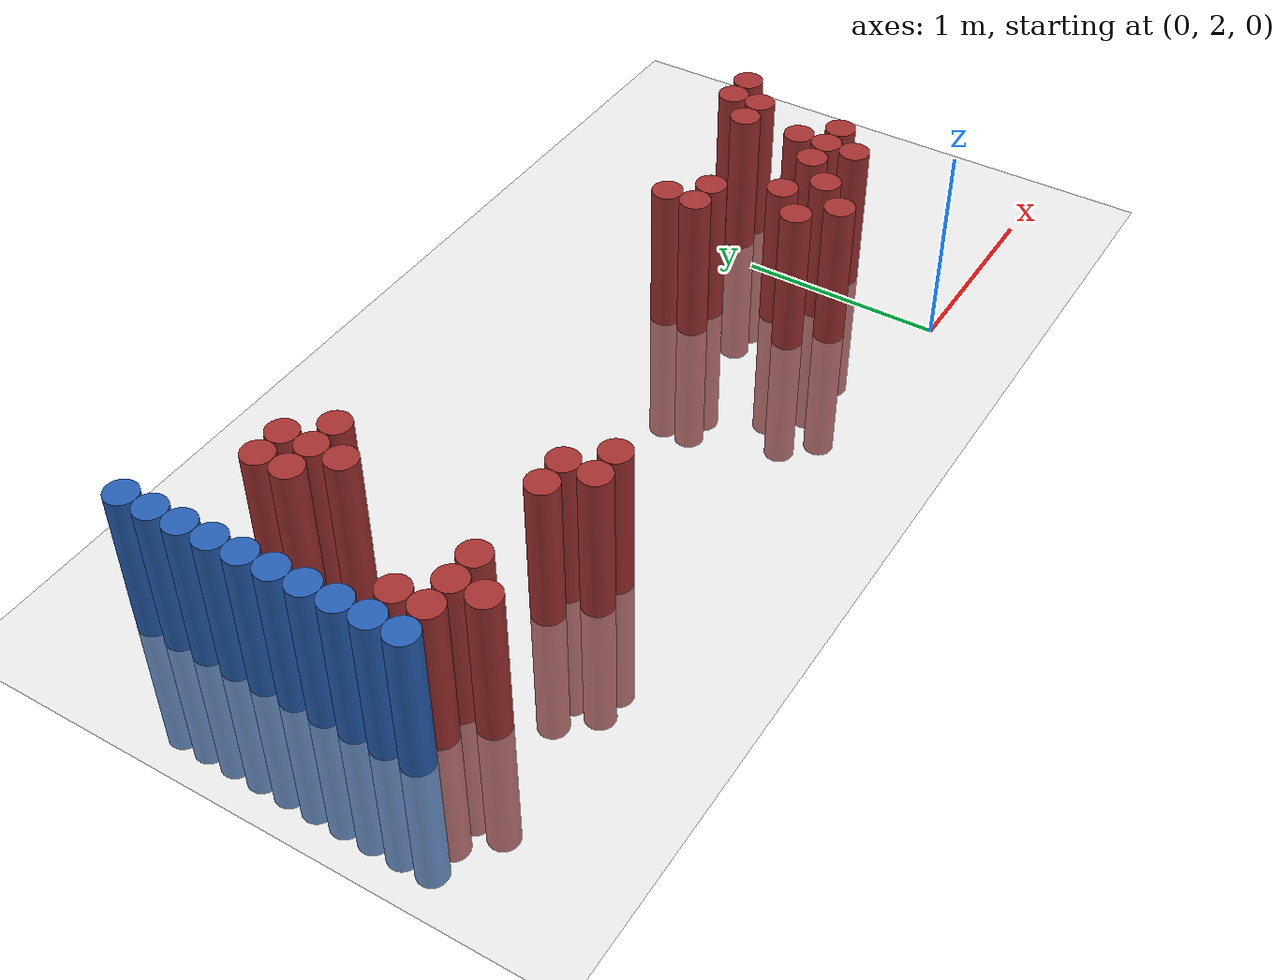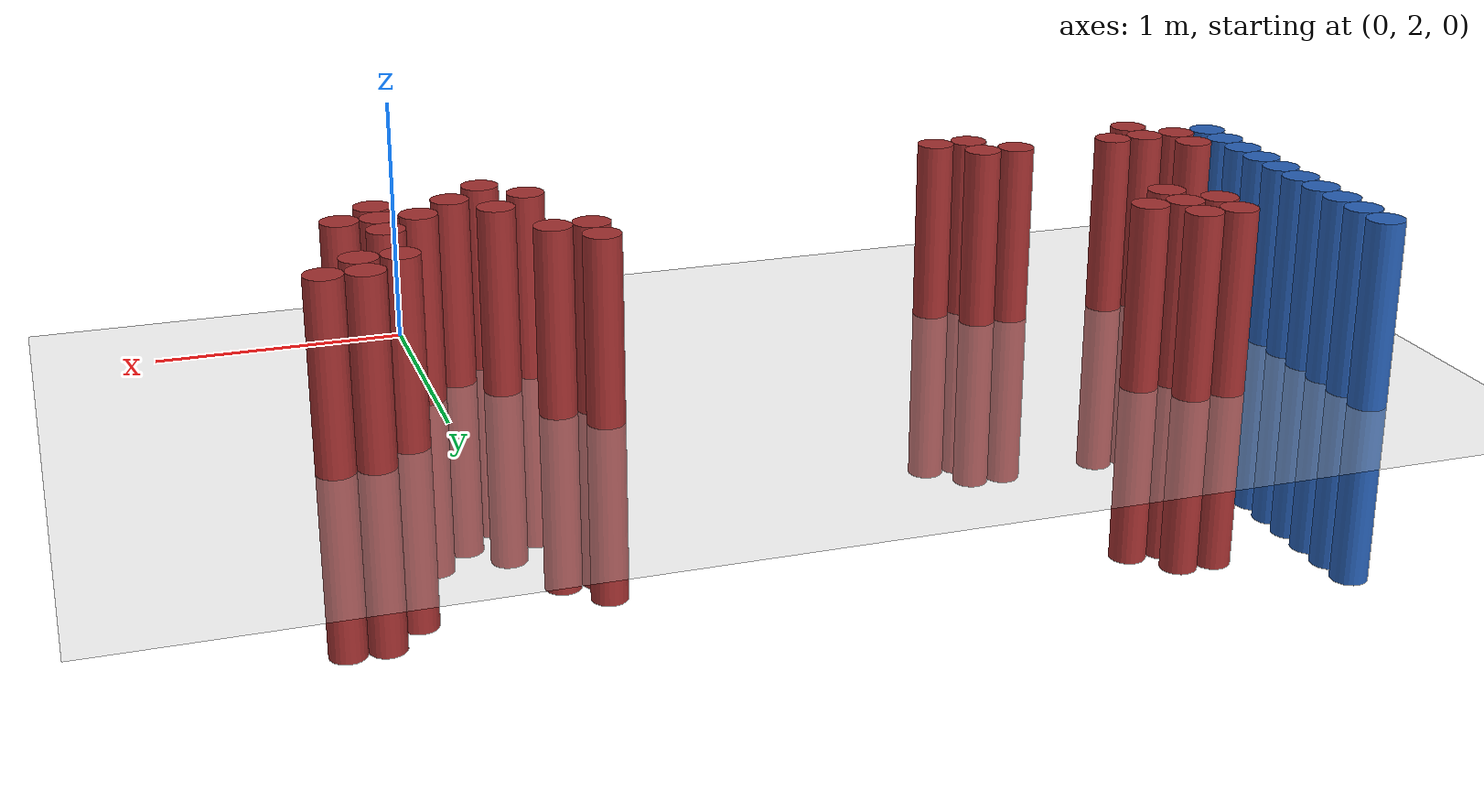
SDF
<sdf version="1.6">
 <world name="default">
  <model name="ground_plane">
   <static>1</static>
   <link name="link">
    <collision name="collision">
     <geometry><plane><normal>0 0 1</normal><size>100 100</size></plane></geometry>
     <surface><friction><ode><mu>100</mu><mu2>50</mu2></ode></friction></surface>
    </collision>
    <visual name="visual">
     <cast_shadows>0</cast_shadows>
     <geometry><plane><normal>0 0 1</normal><size>100 100</size></plane></geometry>
     <material>
      <script><uri>file://media/materials/scripts/gazebo.material</uri><name>Gazebo/Grey</name></script>
     </material>
    </visual>
   </link>
  </model>
  <model name="unit_cylinder_149">
   <static>1</static>
   <pose>-3.425000 2.575000 0.000000 0.000000 0.000000 0.000000</pose>
   <link name="link">
    <inertial>
     <mass>1</mass>
     <inertia><ixx>0.145833</ixx><ixy>0</ixy><ixz>0</ixz><iyy>0.145833</iyy><iyz>0</iyz><izz>0.125</izz></inertia>
    </inertial>
    <collision name="collision">
     <geometry><cylinder><radius>0.075000</radius><length>1.5</length></cylinder></geometry>
    </collision>
    <visual name="visual">
     <geometry><cylinder><radius>0.075000</radius><length>1.5</length></cylinder></geometry>
     <material>
      <ambient>0.152000 0.379000 0.720000 1</ambient>
      <diffuse>0.152000 0.379000 0.720000 1</diffuse>
     </material>
     <material>
      <script><name>Gazebo/Grey</name><uri>file://media/materials/scripts/gazebo.material</uri></script>
     </material>
    </visual>
   </link>
  </model>
  <model name="unit_cylinder_151">
   <static>1</static>
   <pose>-3.425000 2.725000 0.000000 0.000000 0.000000 0.000000</pose>
   <link name="link">
    <inertial>
     <mass>1</mass>
     <inertia><ixx>0.145833</ixx><ixy>0</ixy><ixz>0</ixz><iyy>0.145833</iyy><iyz>0</iyz><izz>0.125</izz></inertia>
    </inertial>
    <collision name="collision">
     <geometry><cylinder><radius>0.075000</radius><length>1.5</length></cylinder></geometry>
    </collision>
    <visual name="visual">
     <geometry><cylinder><radius>0.075000</radius><length>1.5</length></cylinder></geometry>
     <material>
      <ambient>0.152000 0.379000 0.720000 1</ambient>
      <diffuse>0.152000 0.379000 0.720000 1</diffuse>
     </material>
     <material>
      <script><name>Gazebo/Grey</name><uri>file://media/materials/scripts/gazebo.material</uri></script>
     </material>
    </visual>
   </link>
  </model>
  <model name="unit_cylinder_153">
   <static>1</static>
   <pose>-3.425000 2.875000 0.000000 0.000000 0.000000 0.000000</pose>
   <link name="link">
    <inertial>
     <mass>1</mass>
     <inertia><ixx>0.145833</ixx><ixy>0</ixy><ixz>0</ixz><iyy>0.145833</iyy><iyz>0</iyz><izz>0.125</izz></inertia>
    </inertial>
    <collision name="collision">
     <geometry><cylinder><radius>0.075000</radius><length>1.5</length></cylinder></geometry>
    </collision>
    <visual name="visual">
     <geometry><cylinder><radius>0.075000</radius><length>1.5</length></cylinder></geometry>
     <material>
      <ambient>0.152000 0.379000 0.720000 1</ambient>
      <diffuse>0.152000 0.379000 0.720000 1</diffuse>
     </material>
     <material>
      <script><name>Gazebo/Grey</name><uri>file://media/materials/scripts/gazebo.material</uri></script>
     </material>
    </visual>
   </link>
  </model>
  <model name="unit_cylinder_155">
   <static>1</static>
   <pose>-3.425000 3.025000 0.000000 0.000000 0.000000 0.000000</pose>
   <link name="link">
    <inertial>
     <mass>1</mass>
     <inertia><ixx>0.145833</ixx><ixy>0</ixy><ixz>0</ixz><iyy>0.145833</iyy><iyz>0</iyz><izz>0.125</izz></inertia>
    </inertial>
    <collision name="collision">
     <geometry><cylinder><radius>0.075000</radius><length>1.5</length></cylinder></geometry>
    </collision>
    <visual name="visual">
     <geometry><cylinder><radius>0.075000</radius><length>1.5</length></cylinder></geometry>
     <material>
      <ambient>0.152000 0.379000 0.720000 1</ambient>
      <diffuse>0.152000 0.379000 0.720000 1</diffuse>
     </material>
     <material>
      <script><name>Gazebo/Grey</name><uri>file://media/materials/scripts/gazebo.material</uri></script>
     </material>
    </visual>
   </link>
  </model>
  <model name="unit_cylinder_157">
   <static>1</static>
   <pose>-3.425000 3.175000 0.000000 0.000000 0.000000 0.000000</pose>
   <link name="link">
    <inertial>
     <mass>1</mass>
     <inertia><ixx>0.145833</ixx><ixy>0</ixy><ixz>0</ixz><iyy>0.145833</iyy><iyz>0</iyz><izz>0.125</izz></inertia>
    </inertial>
    <collision name="collision">
     <geometry><cylinder><radius>0.075000</radius><length>1.5</length></cylinder></geometry>
    </collision>
    <visual name="visual">
     <geometry><cylinder><radius>0.075000</radius><length>1.5</length></cylinder></geometry>
     <material>
      <ambient>0.152000 0.379000 0.720000 1</ambient>
      <diffuse>0.152000 0.379000 0.720000 1</diffuse>
     </material>
     <material>
      <script><name>Gazebo/Grey</name><uri>file://media/materials/scripts/gazebo.material</uri></script>
     </material>
    </visual>
   </link>
  </model>
  <model name="unit_cylinder_159">
   <static>1</static>
   <pose>-3.425000 3.325000 0.000000 0.000000 0.000000 0.000000</pose>
   <link name="link">
    <inertial>
     <mass>1</mass>
     <inertia><ixx>0.145833</ixx><ixy>0</ixy><ixz>0</ixz><iyy>0.145833</iyy><iyz>0</iyz><izz>0.125</izz></inertia>
    </inertial>
    <collision name="collision">
     <geometry><cylinder><radius>0.075000</radius><length>1.5</length></cylinder></geometry>
    </collision>
    <visual name="visual">
     <geometry><cylinder><radius>0.075000</radius><length>1.5</length></cylinder></geometry>
     <material>
      <ambient>0.152000 0.379000 0.720000 1</ambient>
      <diffuse>0.152000 0.379000 0.720000 1</diffuse>
     </material>
     <material>
      <script><name>Gazebo/Grey</name><uri>file://media/materials/scripts/gazebo.material</uri></script>
     </material>
    </visual>
   </link>
  </model>
  <model name="unit_cylinder_161">
   <static>1</static>
   <pose>-3.425000 3.475000 0.000000 0.000000 0.000000 0.000000</pose>
   <link name="link">
    <inertial>
     <mass>1</mass>
     <inertia><ixx>0.145833</ixx><ixy>0</ixy><ixz>0</ixz><iyy>0.145833</iyy><iyz>0</iyz><izz>0.125</izz></inertia>
    </inertial>
    <collision name="collision">
     <geometry><cylinder><radius>0.075000</radius><length>1.5</length></cylinder></geometry>
    </collision>
    <visual name="visual">
     <geometry><cylinder><radius>0.075000</radius><length>1.5</length></cylinder></geometry>
     <material>
      <ambient>0.152000 0.379000 0.720000 1</ambient>
      <diffuse>0.152000 0.379000 0.720000 1</diffuse>
     </material>
     <material>
      <script><name>Gazebo/Grey</name><uri>file://media/materials/scripts/gazebo.material</uri></script>
     </material>
    </visual>
   </link>
  </model>
  <model name="unit_cylinder_163">
   <static>1</static>
   <pose>-3.425000 3.625000 0.000000 0.000000 0.000000 0.000000</pose>
   <link name="link">
    <inertial>
     <mass>1</mass>
     <inertia><ixx>0.145833</ixx><ixy>0</ixy><ixz>0</ixz><iyy>0.145833</iyy><iyz>0</iyz><izz>0.125</izz></inertia>
    </inertial>
    <collision name="collision">
     <geometry><cylinder><radius>0.075000</radius><length>1.5</length></cylinder></geometry>
    </collision>
    <visual name="visual">
     <geometry><cylinder><radius>0.075000</radius><length>1.5</length></cylinder></geometry>
     <material>
      <ambient>0.152000 0.379000 0.720000 1</ambient>
      <diffuse>0.152000 0.379000 0.720000 1</diffuse>
     </material>
     <material>
      <script><name>Gazebo/Grey</name><uri>file://media/materials/scripts/gazebo.material</uri></script>
     </material>
    </visual>
   </link>
  </model>
  <model name="unit_cylinder_165">
   <static>1</static>
   <pose>-3.425000 3.775000 0.000000 0.000000 0.000000 0.000000</pose>
   <link name="link">
    <inertial>
     <mass>1</mass>
     <inertia><ixx>0.145833</ixx><ixy>0</ixy><ixz>0</ixz><iyy>0.145833</iyy><iyz>0</iyz><izz>0.125</izz></inertia>
    </inertial>
    <collision name="collision">
     <geometry><cylinder><radius>0.075000</radius><length>1.5</length></cylinder></geometry>
    </collision>
    <visual name="visual">
     <geometry><cylinder><radius>0.075000</radius><length>1.5</length></cylinder></geometry>
     <material>
      <ambient>0.152000 0.379000 0.720000 1</ambient>
      <diffuse>0.152000 0.379000 0.720000 1</diffuse>
     </material>
     <material>
      <script><name>Gazebo/Grey</name><uri>file://media/materials/scripts/gazebo.material</uri></script>
     </material>
    </visual>
   </link>
  </model>
  <model name="unit_cylinder_167">
   <static>1</static>
   <pose>-3.425000 3.925000 0.000000 0.000000 0.000000 0.000000</pose>
   <link name="link">
    <inertial>
     <mass>1</mass>
     <inertia><ixx>0.145833</ixx><ixy>0</ixy><ixz>0</ixz><iyy>0.145833</iyy><iyz>0</iyz><izz>0.125</izz></inertia>
    </inertial>
    <collision name="collision">
     <geometry><cylinder><radius>0.075000</radius><length>1.5</length></cylinder></geometry>
    </collision>
    <visual name="visual">
     <geometry><cylinder><radius>0.075000</radius><length>1.5</length></cylinder></geometry>
     <material>
      <ambient>0.152000 0.379000 0.720000 1</ambient>
      <diffuse>0.152000 0.379000 0.720000 1</diffuse>
     </material>
     <material>
      <script><name>Gazebo/Grey</name><uri>file://media/materials/scripts/gazebo.material</uri></script>
     </material>
    </visual>
   </link>
  </model>
  <model name="unit_cylinder_238">
   <static>1</static>
   <pose>-3.425000 2.575000 0.000000 0.000000 0.000000 0.000000</pose>
   <link name="link">
    <inertial>
     <mass>1</mass>
     <inertia><ixx>0.145833</ixx><ixy>0</ixy><ixz>0</ixz><iyy>0.145833</iyy><iyz>0</iyz><izz>0.125</izz></inertia>
    </inertial>
    <collision name="collision">
     <geometry><cylinder><radius>0.075000</radius><length>1.5</length></cylinder></geometry>
    </collision>
    <visual name="visual">
     <geometry><cylinder><radius>0.075000</radius><length>1.5</length></cylinder></geometry>
     <material>
      <ambient>0.152000 0.379000 0.720000 1</ambient>
      <diffuse>0.152000 0.379000 0.720000 1</diffuse>
     </material>
     <material>
      <script><name>Gazebo/Grey</name><uri>file://media/materials/scripts/gazebo.material</uri></script>
     </material>
    </visual>
   </link>
  </model>
  <model name="unit_cylinder_239">
   <static>1</static>
   <pose>-3.425000 2.725000 0.000000 0.000000 0.000000 0.000000</pose>
   <link name="link">
    <inertial>
     <mass>1</mass>
     <inertia><ixx>0.145833</ixx><ixy>0</ixy><ixz>0</ixz><iyy>0.145833</iyy><iyz>0</iyz><izz>0.125</izz></inertia>
    </inertial>
    <collision name="collision">
     <geometry><cylinder><radius>0.075000</radius><length>1.5</length></cylinder></geometry>
    </collision>
    <visual name="visual">
     <geometry><cylinder><radius>0.075000</radius><length>1.5</length></cylinder></geometry>
     <material>
      <ambient>0.152000 0.379000 0.720000 1</ambient>
      <diffuse>0.152000 0.379000 0.720000 1</diffuse>
     </material>
     <material>
      <script><name>Gazebo/Grey</name><uri>file://media/materials/scripts/gazebo.material</uri></script>
     </material>
    </visual>
   </link>
  </model>
  <model name="unit_cylinder_240">
   <static>1</static>
   <pose>-3.425000 2.875000 0.000000 0.000000 0.000000 0.000000</pose>
   <link name="link">
    <inertial>
     <mass>1</mass>
     <inertia><ixx>0.145833</ixx><ixy>0</ixy><ixz>0</ixz><iyy>0.145833</iyy><iyz>0</iyz><izz>0.125</izz></inertia>
    </inertial>
    <collision name="collision">
     <geometry><cylinder><radius>0.075000</radius><length>1.5</length></cylinder></geometry>
    </collision>
    <visual name="visual">
     <geometry><cylinder><radius>0.075000</radius><length>1.5</length></cylinder></geometry>
     <material>
      <ambient>0.152000 0.379000 0.720000 1</ambient>
      <diffuse>0.152000 0.379000 0.720000 1</diffuse>
     </material>
     <material>
      <script><name>Gazebo/Grey</name><uri>file://media/materials/scripts/gazebo.material</uri></script>
     </material>
    </visual>
   </link>
  </model>
  <model name="unit_cylinder_241">
   <static>1</static>
   <pose>-3.425000 3.025000 0.000000 0.000000 0.000000 0.000000</pose>
   <link name="link">
    <inertial>
     <mass>1</mass>
     <inertia><ixx>0.145833</ixx><ixy>0</ixy><ixz>0</ixz><iyy>0.145833</iyy><iyz>0</iyz><izz>0.125</izz></inertia>
    </inertial>
    <collision name="collision">
     <geometry><cylinder><radius>0.075000</radius><length>1.5</length></cylinder></geometry>
    </collision>
    <visual name="visual">
     <geometry><cylinder><radius>0.075000</radius><length>1.5</length></cylinder></geometry>
     <material>
      <ambient>0.152000 0.379000 0.720000 1</ambient>
      <diffuse>0.152000 0.379000 0.720000 1</diffuse>
     </material>
     <material>
      <script><name>Gazebo/Grey</name><uri>file://media/materials/scripts/gazebo.material</uri></script>
     </material>
    </visual>
   </link>
  </model>
  <model name="unit_cylinder_242">
   <static>1</static>
   <pose>-3.425000 3.175000 0.000000 0.000000 0.000000 0.000000</pose>
   <link name="link">
    <inertial>
     <mass>1</mass>
     <inertia><ixx>0.145833</ixx><ixy>0</ixy><ixz>0</ixz><iyy>0.145833</iyy><iyz>0</iyz><izz>0.125</izz></inertia>
    </inertial>
    <collision name="collision">
     <geometry><cylinder><radius>0.075000</radius><length>1.5</length></cylinder></geometry>
    </collision>
    <visual name="visual">
     <geometry><cylinder><radius>0.075000</radius><length>1.5</length></cylinder></geometry>
     <material>
      <ambient>0.152000 0.379000 0.720000 1</ambient>
      <diffuse>0.152000 0.379000 0.720000 1</diffuse>
     </material>
     <material>
      <script><name>Gazebo/Grey</name><uri>file://media/materials/scripts/gazebo.material</uri></script>
     </material>
    </visual>
   </link>
  </model>
  <model name="unit_cylinder_243">
   <static>1</static>
   <pose>-3.425000 3.325000 0.000000 0.000000 0.000000 0.000000</pose>
   <link name="link">
    <inertial>
     <mass>1</mass>
     <inertia><ixx>0.145833</ixx><ixy>0</ixy><ixz>0</ixz><iyy>0.145833</iyy><iyz>0</iyz><izz>0.125</izz></inertia>
    </inertial>
    <collision name="collision">
     <geometry><cylinder><radius>0.075000</radius><length>1.5</length></cylinder></geometry>
    </collision>
    <visual name="visual">
     <geometry><cylinder><radius>0.075000</radius><length>1.5</length></cylinder></geometry>
     <material>
      <ambient>0.152000 0.379000 0.720000 1</ambient>
      <diffuse>0.152000 0.379000 0.720000 1</diffuse>
     </material>
     <material>
      <script><name>Gazebo/Grey</name><uri>file://media/materials/scripts/gazebo.material</uri></script>
     </material>
    </visual>
   </link>
  </model>
  <model name="unit_cylinder_244">
   <static>1</static>
   <pose>-3.425000 3.475000 0.000000 0.000000 0.000000 0.000000</pose>
   <link name="link">
    <inertial>
     <mass>1</mass>
     <inertia><ixx>0.145833</ixx><ixy>0</ixy><ixz>0</ixz><iyy>0.145833</iyy><iyz>0</iyz><izz>0.125</izz></inertia>
    </inertial>
    <collision name="collision">
     <geometry><cylinder><radius>0.075000</radius><length>1.5</length></cylinder></geometry>
    </collision>
    <visual name="visual">
     <geometry><cylinder><radius>0.075000</radius><length>1.5</length></cylinder></geometry>
     <material>
      <ambient>0.152000 0.379000 0.720000 1</ambient>
      <diffuse>0.152000 0.379000 0.720000 1</diffuse>
     </material>
     <material>
      <script><name>Gazebo/Grey</name><uri>file://media/materials/scripts/gazebo.material</uri></script>
     </material>
    </visual>
   </link>
  </model>
  <model name="unit_cylinder_245">
   <static>1</static>
   <pose>-3.425000 3.625000 0.000000 0.000000 0.000000 0.000000</pose>
   <link name="link">
    <inertial>
     <mass>1</mass>
     <inertia><ixx>0.145833</ixx><ixy>0</ixy><ixz>0</ixz><iyy>0.145833</iyy><iyz>0</iyz><izz>0.125</izz></inertia>
    </inertial>
    <collision name="collision">
     <geometry><cylinder><radius>0.075000</radius><length>1.5</length></cylinder></geometry>
    </collision>
    <visual name="visual">
     <geometry><cylinder><radius>0.075000</radius><length>1.5</length></cylinder></geometry>
     <material>
      <ambient>0.152000 0.379000 0.720000 1</ambient>
      <diffuse>0.152000 0.379000 0.720000 1</diffuse>
     </material>
     <material>
      <script><name>Gazebo/Grey</name><uri>file://media/materials/scripts/gazebo.material</uri></script>
     </material>
    </visual>
   </link>
  </model>
  <model name="unit_cylinder_246">
   <static>1</static>
   <pose>-3.425000 3.775000 0.000000 0.000000 0.000000 0.000000</pose>
   <link name="link">
    <inertial>
     <mass>1</mass>
     <inertia><ixx>0.145833</ixx><ixy>0</ixy><ixz>0</ixz><iyy>0.145833</iyy><iyz>0</iyz><izz>0.125</izz></inertia>
    </inertial>
    <collision name="collision">
     <geometry><cylinder><radius>0.075000</radius><length>1.5</length></cylinder></geometry>
    </collision>
    <visual name="visual">
     <geometry><cylinder><radius>0.075000</radius><length>1.5</length></cylinder></geometry>
     <material>
      <ambient>0.152000 0.379000 0.720000 1</ambient>
      <diffuse>0.152000 0.379000 0.720000 1</diffuse>
     </material>
     <material>
      <script><name>Gazebo/Grey</name><uri>file://media/materials/scripts/gazebo.material</uri></script>
     </material>
    </visual>
   </link>
  </model>
  <model name="unit_cylinder_247">
   <static>1</static>
   <pose>-3.425000 3.925000 0.000000 0.000000 0.000000 0.000000</pose>
   <link name="link">
    <inertial>
     <mass>1</mass>
     <inertia><ixx>0.145833</ixx><ixy>0</ixy><ixz>0</ixz><iyy>0.145833</iyy><iyz>0</iyz><izz>0.125</izz></inertia>
    </inertial>
    <collision name="collision">
     <geometry><cylinder><radius>0.075000</radius><length>1.5</length></cylinder></geometry>
    </collision>
    <visual name="visual">
     <geometry><cylinder><radius>0.075000</radius><length>1.5</length></cylinder></geometry>
     <material>
      <ambient>0.152000 0.379000 0.720000 1</ambient>
      <diffuse>0.152000 0.379000 0.720000 1</diffuse>
     </material>
     <material>
      <script><name>Gazebo/Grey</name><uri>file://media/materials/scripts/gazebo.material</uri></script>
     </material>
    </visual>
   </link>
  </model>
  <model name="unit_cylinder_271">
   <static>1</static>
   <pose>-3.275000 2.575000 0.000000 0.000000 0.000000 0.000000</pose>
   <link name="link">
    <inertial>
     <mass>1</mass>
     <inertia><ixx>0.145833</ixx><ixy>0</ixy><ixz>0</ixz><iyy>0.145833</iyy><iyz>0</iyz><izz>0.125</izz></inertia>
    </inertial>
    <collision name="collision">
     <geometry><cylinder><radius>0.075000</radius><length>1.5</length></cylinder></geometry>
    </collision>
    <visual name="visual">
     <geometry><cylinder><radius>0.075000</radius><length>1.5</length></cylinder></geometry>
     <material>
      <ambient>0.648000 0.192000 0.192000 1</ambient>
      <diffuse>0.648000 0.192000 0.192000 1</diffuse>
     </material>
     <material>
      <script><name>Gazebo/Grey</name><uri>file://media/materials/scripts/gazebo.material</uri></script>
     </material>
    </visual>
   </link>
  </model>
  <model name="unit_cylinder_272">
   <static>1</static>
   <pose>-3.275000 2.725000 0.000000 0.000000 0.000000 0.000000</pose>
   <link name="link">
    <inertial>
     <mass>1</mass>
     <inertia><ixx>0.145833</ixx><ixy>0</ixy><ixz>0</ixz><iyy>0.145833</iyy><iyz>0</iyz><izz>0.125</izz></inertia>
    </inertial>
    <collision name="collision">
     <geometry><cylinder><radius>0.075000</radius><length>1.5</length></cylinder></geometry>
    </collision>
    <visual name="visual">
     <geometry><cylinder><radius>0.075000</radius><length>1.5</length></cylinder></geometry>
     <material>
      <ambient>0.648000 0.192000 0.192000 1</ambient>
      <diffuse>0.648000 0.192000 0.192000 1</diffuse>
     </material>
     <material>
      <script><name>Gazebo/Grey</name><uri>file://media/materials/scripts/gazebo.material</uri></script>
     </material>
    </visual>
   </link>
  </model>
  <model name="unit_cylinder_278">
   <static>1</static>
   <pose>-3.125000 2.425000 0.000000 0.000000 0.000000 0.000000</pose>
   <link name="link">
    <inertial>
     <mass>1</mass>
     <inertia><ixx>0.145833</ixx><ixy>0</ixy><ixz>0</ixz><iyy>0.145833</iyy><iyz>0</iyz><izz>0.125</izz></inertia>
    </inertial>
    <collision name="collision">
     <geometry><cylinder><radius>0.075000</radius><length>1.5</length></cylinder></geometry>
    </collision>
    <visual name="visual">
     <geometry><cylinder><radius>0.075000</radius><length>1.5</length></cylinder></geometry>
     <material>
      <ambient>0.648000 0.192000 0.192000 1</ambient>
      <diffuse>0.648000 0.192000 0.192000 1</diffuse>
     </material>
     <material>
      <script><name>Gazebo/Grey</name><uri>file://media/materials/scripts/gazebo.material</uri></script>
     </material>
    </visual>
   </link>
  </model>
  <model name="unit_cylinder_279">
   <static>1</static>
   <pose>-3.125000 2.575000 0.000000 0.000000 0.000000 0.000000</pose>
   <link name="link">
    <inertial>
     <mass>1</mass>
     <inertia><ixx>0.145833</ixx><ixy>0</ixy><ixz>0</ixz><iyy>0.145833</iyy><iyz>0</iyz><izz>0.125</izz></inertia>
    </inertial>
    <collision name="collision">
     <geometry><cylinder><radius>0.075000</radius><length>1.5</length></cylinder></geometry>
    </collision>
    <visual name="visual">
     <geometry><cylinder><radius>0.075000</radius><length>1.5</length></cylinder></geometry>
     <material>
      <ambient>0.648000 0.192000 0.192000 1</ambient>
      <diffuse>0.648000 0.192000 0.192000 1</diffuse>
     </material>
     <material>
      <script><name>Gazebo/Grey</name><uri>file://media/materials/scripts/gazebo.material</uri></script>
     </material>
    </visual>
   </link>
  </model>
  <model name="unit_cylinder_283">
   <static>1</static>
   <pose>-2.975000 2.575000 0.000000 0.000000 0.000000 0.000000</pose>
   <link name="link">
    <inertial>
     <mass>1</mass>
     <inertia><ixx>0.145833</ixx><ixy>0</ixy><ixz>0</ixz><iyy>0.145833</iyy><iyz>0</iyz><izz>0.125</izz></inertia>
    </inertial>
    <collision name="collision">
     <geometry><cylinder><radius>0.075000</radius><length>1.5</length></cylinder></geometry>
    </collision>
    <visual name="visual">
     <geometry><cylinder><radius>0.075000</radius><length>1.5</length></cylinder></geometry>
     <material>
      <ambient>0.648000 0.192000 0.192000 1</ambient>
      <diffuse>0.648000 0.192000 0.192000 1</diffuse>
     </material>
     <material>
      <script><name>Gazebo/Grey</name><uri>file://media/materials/scripts/gazebo.material</uri></script>
     </material>
    </visual>
   </link>
  </model>
  <model name="unit_cylinder_284">
   <static>1</static>
   <pose>-2.975000 3.475000 0.000000 0.000000 0.000000 0.000000</pose>
   <link name="link">
    <inertial>
     <mass>1</mass>
     <inertia><ixx>0.145833</ixx><ixy>0</ixy><ixz>0</ixz><iyy>0.145833</iyy><iyz>0</iyz><izz>0.125</izz></inertia>
    </inertial>
    <collision name="collision">
     <geometry><cylinder><radius>0.075000</radius><length>1.5</length></cylinder></geometry>
    </collision>
    <visual name="visual">
     <geometry><cylinder><radius>0.075000</radius><length>1.5</length></cylinder></geometry>
     <material>
      <ambient>0.648000 0.192000 0.192000 1</ambient>
      <diffuse>0.648000 0.192000 0.192000 1</diffuse>
     </material>
     <material>
      <script><name>Gazebo/Grey</name><uri>file://media/materials/scripts/gazebo.material</uri></script>
     </material>
    </visual>
   </link>
  </model>
  <model name="unit_cylinder_285">
   <static>1</static>
   <pose>-2.975000 3.625000 0.000000 0.000000 0.000000 0.000000</pose>
   <link name="link">
    <inertial>
     <mass>1</mass>
     <inertia><ixx>0.145833</ixx><ixy>0</ixy><ixz>0</ixz><iyy>0.145833</iyy><iyz>0</iyz><izz>0.125</izz></inertia>
    </inertial>
    <collision name="collision">
     <geometry><cylinder><radius>0.075000</radius><length>1.5</length></cylinder></geometry>
    </collision>
    <visual name="visual">
     <geometry><cylinder><radius>0.075000</radius><length>1.5</length></cylinder></geometry>
     <material>
      <ambient>0.648000 0.192000 0.192000 1</ambient>
      <diffuse>0.648000 0.192000 0.192000 1</diffuse>
     </material>
     <material>
      <script><name>Gazebo/Grey</name><uri>file://media/materials/scripts/gazebo.material</uri></script>
     </material>
    </visual>
   </link>
  </model>
  <model name="unit_cylinder_288">
   <static>1</static>
   <pose>-2.825000 3.325000 0.000000 0.000000 0.000000 0.000000</pose>
   <link name="link">
    <inertial>
     <mass>1</mass>
     <inertia><ixx>0.145833</ixx><ixy>0</ixy><ixz>0</ixz><iyy>0.145833</iyy><iyz>0</iyz><izz>0.125</izz></inertia>
    </inertial>
    <collision name="collision">
     <geometry><cylinder><radius>0.075000</radius><length>1.5</length></cylinder></geometry>
    </collision>
    <visual name="visual">
     <geometry><cylinder><radius>0.075000</radius><length>1.5</length></cylinder></geometry>
     <material>
      <ambient>0.648000 0.192000 0.192000 1</ambient>
      <diffuse>0.648000 0.192000 0.192000 1</diffuse>
     </material>
     <material>
      <script><name>Gazebo/Grey</name><uri>file://media/materials/scripts/gazebo.material</uri></script>
     </material>
    </visual>
   </link>
  </model>
  <model name="unit_cylinder_289">
   <static>1</static>
   <pose>-2.825000 3.475000 0.000000 0.000000 0.000000 0.000000</pose>
   <link name="link">
    <inertial>
     <mass>1</mass>
     <inertia><ixx>0.145833</ixx><ixy>0</ixy><ixz>0</ixz><iyy>0.145833</iyy><iyz>0</iyz><izz>0.125</izz></inertia>
    </inertial>
    <collision name="collision">
     <geometry><cylinder><radius>0.075000</radius><length>1.5</length></cylinder></geometry>
    </collision>
    <visual name="visual">
     <geometry><cylinder><radius>0.075000</radius><length>1.5</length></cylinder></geometry>
     <material>
      <ambient>0.648000 0.192000 0.192000 1</ambient>
      <diffuse>0.648000 0.192000 0.192000 1</diffuse>
     </material>
     <material>
      <script><name>Gazebo/Grey</name><uri>file://media/materials/scripts/gazebo.material</uri></script>
     </material>
    </visual>
   </link>
  </model>
  <model name="unit_cylinder_290">
   <static>1</static>
   <pose>-2.825000 3.625000 0.000000 0.000000 0.000000 0.000000</pose>
   <link name="link">
    <inertial>
     <mass>1</mass>
     <inertia><ixx>0.145833</ixx><ixy>0</ixy><ixz>0</ixz><iyy>0.145833</iyy><iyz>0</iyz><izz>0.125</izz></inertia>
    </inertial>
    <collision name="collision">
     <geometry><cylinder><radius>0.075000</radius><length>1.5</length></cylinder></geometry>
    </collision>
    <visual name="visual">
     <geometry><cylinder><radius>0.075000</radius><length>1.5</length></cylinder></geometry>
     <material>
      <ambient>0.648000 0.192000 0.192000 1</ambient>
      <diffuse>0.648000 0.192000 0.192000 1</diffuse>
     </material>
     <material>
      <script><name>Gazebo/Grey</name><uri>file://media/materials/scripts/gazebo.material</uri></script>
     </material>
    </visual>
   </link>
  </model>
  <model name="unit_cylinder_291">
   <static>1</static>
   <pose>-2.675000 3.475000 0.000000 0.000000 0.000000 0.000000</pose>
   <link name="link">
    <inertial>
     <mass>1</mass>
     <inertia><ixx>0.145833</ixx><ixy>0</ixy><ixz>0</ixz><iyy>0.145833</iyy><iyz>0</iyz><izz>0.125</izz></inertia>
    </inertial>
    <collision name="collision">
     <geometry><cylinder><radius>0.075000</radius><length>1.5</length></cylinder></geometry>
    </collision>
    <visual name="visual">
     <geometry><cylinder><radius>0.075000</radius><length>1.5</length></cylinder></geometry>
     <material>
      <ambient>0.648000 0.192000 0.192000 1</ambient>
      <diffuse>0.648000 0.192000 0.192000 1</diffuse>
     </material>
     <material>
      <script><name>Gazebo/Grey</name><uri>file://media/materials/scripts/gazebo.material</uri></script>
     </material>
    </visual>
   </link>
  </model>
  <model name="unit_cylinder_292">
   <static>1</static>
   <pose>-2.525000 2.575000 0.000000 0.000000 0.000000 0.000000</pose>
   <link name="link">
    <inertial>
     <mass>1</mass>
     <inertia><ixx>0.145833</ixx><ixy>0</ixy><ixz>0</ixz><iyy>0.145833</iyy><iyz>0</iyz><izz>0.125</izz></inertia>
    </inertial>
    <collision name="collision">
     <geometry><cylinder><radius>0.075000</radius><length>1.5</length></cylinder></geometry>
    </collision>
    <visual name="visual">
     <geometry><cylinder><radius>0.075000</radius><length>1.5</length></cylinder></geometry>
     <material>
      <ambient>0.648000 0.192000 0.192000 1</ambient>
      <diffuse>0.648000 0.192000 0.192000 1</diffuse>
     </material>
     <material>
      <script><name>Gazebo/Grey</name><uri>file://media/materials/scripts/gazebo.material</uri></script>
     </material>
    </visual>
   </link>
  </model>
  <model name="unit_cylinder_293">
   <static>1</static>
   <pose>-2.375000 2.425000 0.000000 0.000000 0.000000 0.000000</pose>
   <link name="link">
    <inertial>
     <mass>1</mass>
     <inertia><ixx>0.145833</ixx><ixy>0</ixy><ixz>0</ixz><iyy>0.145833</iyy><iyz>0</iyz><izz>0.125</izz></inertia>
    </inertial>
    <collision name="collision">
     <geometry><cylinder><radius>0.075000</radius><length>1.5</length></cylinder></geometry>
    </collision>
    <visual name="visual">
     <geometry><cylinder><radius>0.075000</radius><length>1.5</length></cylinder></geometry>
     <material>
      <ambient>0.648000 0.192000 0.192000 1</ambient>
      <diffuse>0.648000 0.192000 0.192000 1</diffuse>
     </material>
     <material>
      <script><name>Gazebo/Grey</name><uri>file://media/materials/scripts/gazebo.material</uri></script>
     </material>
    </visual>
   </link>
  </model>
  <model name="unit_cylinder_294">
   <static>1</static>
   <pose>-2.375000 2.575000 0.000000 0.000000 0.000000 0.000000</pose>
   <link name="link">
    <inertial>
     <mass>1</mass>
     <inertia><ixx>0.145833</ixx><ixy>0</ixy><ixz>0</ixz><iyy>0.145833</iyy><iyz>0</iyz><izz>0.125</izz></inertia>
    </inertial>
    <collision name="collision">
     <geometry><cylinder><radius>0.075000</radius><length>1.5</length></cylinder></geometry>
    </collision>
    <visual name="visual">
     <geometry><cylinder><radius>0.075000</radius><length>1.5</length></cylinder></geometry>
     <material>
      <ambient>0.648000 0.192000 0.192000 1</ambient>
      <diffuse>0.648000 0.192000 0.192000 1</diffuse>
     </material>
     <material>
      <script><name>Gazebo/Grey</name><uri>file://media/materials/scripts/gazebo.material</uri></script>
     </material>
    </visual>
   </link>
  </model>
  <model name="unit_cylinder_295">
   <static>1</static>
   <pose>-2.225000 2.425000 0.000000 0.000000 0.000000 0.000000</pose>
   <link name="link">
    <inertial>
     <mass>1</mass>
     <inertia><ixx>0.145833</ixx><ixy>0</ixy><ixz>0</ixz><iyy>0.145833</iyy><iyz>0</iyz><izz>0.125</izz></inertia>
    </inertial>
    <collision name="collision">
     <geometry><cylinder><radius>0.075000</radius><length>1.5</length></cylinder></geometry>
    </collision>
    <visual name="visual">
     <geometry><cylinder><radius>0.075000</radius><length>1.5</length></cylinder></geometry>
     <material>
      <ambient>0.648000 0.192000 0.192000 1</ambient>
      <diffuse>0.648000 0.192000 0.192000 1</diffuse>
     </material>
     <material>
      <script><name>Gazebo/Grey</name><uri>file://media/materials/scripts/gazebo.material</uri></script>
     </material>
    </visual>
   </link>
  </model>
  <model name="unit_cylinder_323">
   <static>1</static>
   <pose>-0.575000 3.025000 0.000000 0.000000 0.000000 0.000000</pose>
   <link name="link">
    <inertial>
     <mass>1</mass>
     <inertia><ixx>0.145833</ixx><ixy>0</ixy><ixz>0</ixz><iyy>0.145833</iyy><iyz>0</iyz><izz>0.125</izz></inertia>
    </inertial>
    <collision name="collision">
     <geometry><cylinder><radius>0.075000</radius><length>1.5</length></cylinder></geometry>
    </collision>
    <visual name="visual">
     <geometry><cylinder><radius>0.075000</radius><length>1.5</length></cylinder></geometry>
     <material>
      <ambient>0.648000 0.192000 0.192000 1</ambient>
      <diffuse>0.648000 0.192000 0.192000 1</diffuse>
     </material>
     <material>
      <script><name>Gazebo/Grey</name><uri>file://media/materials/scripts/gazebo.material</uri></script>
     </material>
    </visual>
   </link>
  </model>
  <model name="unit_cylinder_324">
   <static>1</static>
   <pose>-0.575000 3.175000 0.000000 0.000000 0.000000 0.000000</pose>
   <link name="link">
    <inertial>
     <mass>1</mass>
     <inertia><ixx>0.145833</ixx><ixy>0</ixy><ixz>0</ixz><iyy>0.145833</iyy><iyz>0</iyz><izz>0.125</izz></inertia>
    </inertial>
    <collision name="collision">
     <geometry><cylinder><radius>0.075000</radius><length>1.5</length></cylinder></geometry>
    </collision>
    <visual name="visual">
     <geometry><cylinder><radius>0.075000</radius><length>1.5</length></cylinder></geometry>
     <material>
      <ambient>0.648000 0.192000 0.192000 1</ambient>
      <diffuse>0.648000 0.192000 0.192000 1</diffuse>
     </material>
     <material>
      <script><name>Gazebo/Grey</name><uri>file://media/materials/scripts/gazebo.material</uri></script>
     </material>
    </visual>
   </link>
  </model>
  <model name="unit_cylinder_325">
   <static>1</static>
   <pose>-0.425000 2.575000 0.000000 0.000000 0.000000 0.000000</pose>
   <link name="link">
    <inertial>
     <mass>1</mass>
     <inertia><ixx>0.145833</ixx><ixy>0</ixy><ixz>0</ixz><iyy>0.145833</iyy><iyz>0</iyz><izz>0.125</izz></inertia>
    </inertial>
    <collision name="collision">
     <geometry><cylinder><radius>0.075000</radius><length>1.5</length></cylinder></geometry>
    </collision>
    <visual name="visual">
     <geometry><cylinder><radius>0.075000</radius><length>1.5</length></cylinder></geometry>
     <material>
      <ambient>0.648000 0.192000 0.192000 1</ambient>
      <diffuse>0.648000 0.192000 0.192000 1</diffuse>
     </material>
     <material>
      <script><name>Gazebo/Grey</name><uri>file://media/materials/scripts/gazebo.material</uri></script>
     </material>
    </visual>
   </link>
  </model>
  <model name="unit_cylinder_326">
   <static>1</static>
   <pose>-0.425000 3.025000 0.000000 0.000000 0.000000 0.000000</pose>
   <link name="link">
    <inertial>
     <mass>1</mass>
     <inertia><ixx>0.145833</ixx><ixy>0</ixy><ixz>0</ixz><iyy>0.145833</iyy><iyz>0</iyz><izz>0.125</izz></inertia>
    </inertial>
    <collision name="collision">
     <geometry><cylinder><radius>0.075000</radius><length>1.5</length></cylinder></geometry>
    </collision>
    <visual name="visual">
     <geometry><cylinder><radius>0.075000</radius><length>1.5</length></cylinder></geometry>
     <material>
      <ambient>0.648000 0.192000 0.192000 1</ambient>
      <diffuse>0.648000 0.192000 0.192000 1</diffuse>
     </material>
     <material>
      <script><name>Gazebo/Grey</name><uri>file://media/materials/scripts/gazebo.material</uri></script>
     </material>
    </visual>
   </link>
  </model>
  <model name="unit_cylinder_332">
   <static>1</static>
   <pose>-0.275000 2.425000 0.000000 0.000000 0.000000 0.000000</pose>
   <link name="link">
    <inertial>
     <mass>1</mass>
     <inertia><ixx>0.145833</ixx><ixy>0</ixy><ixz>0</ixz><iyy>0.145833</iyy><iyz>0</iyz><izz>0.125</izz></inertia>
    </inertial>
    <collision name="collision">
     <geometry><cylinder><radius>0.075000</radius><length>1.5</length></cylinder></geometry>
    </collision>
    <visual name="visual">
     <geometry><cylinder><radius>0.075000</radius><length>1.5</length></cylinder></geometry>
     <material>
      <ambient>0.648000 0.192000 0.192000 1</ambient>
      <diffuse>0.648000 0.192000 0.192000 1</diffuse>
     </material>
     <material>
      <script><name>Gazebo/Grey</name><uri>file://media/materials/scripts/gazebo.material</uri></script>
     </material>
    </visual>
   </link>
  </model>
  <model name="unit_cylinder_333">
   <static>1</static>
   <pose>-0.275000 2.725000 0.000000 0.000000 0.000000 0.000000</pose>
   <link name="link">
    <inertial>
     <mass>1</mass>
     <inertia><ixx>0.145833</ixx><ixy>0</ixy><ixz>0</ixz><iyy>0.145833</iyy><iyz>0</iyz><izz>0.125</izz></inertia>
    </inertial>
    <collision name="collision">
     <geometry><cylinder><radius>0.075000</radius><length>1.5</length></cylinder></geometry>
    </collision>
    <visual name="visual">
     <geometry><cylinder><radius>0.075000</radius><length>1.5</length></cylinder></geometry>
     <material>
      <ambient>0.648000 0.192000 0.192000 1</ambient>
      <diffuse>0.648000 0.192000 0.192000 1</diffuse>
     </material>
     <material>
      <script><name>Gazebo/Grey</name><uri>file://media/materials/scripts/gazebo.material</uri></script>
     </material>
    </visual>
   </link>
  </model>
  <model name="unit_cylinder_340">
   <static>1</static>
   <pose>-0.125000 2.575000 0.000000 0.000000 0.000000 0.000000</pose>
   <link name="link">
    <inertial>
     <mass>1</mass>
     <inertia><ixx>0.145833</ixx><ixy>0</ixy><ixz>0</ixz><iyy>0.145833</iyy><iyz>0</iyz><izz>0.125</izz></inertia>
    </inertial>
    <collision name="collision">
     <geometry><cylinder><radius>0.075000</radius><length>1.5</length></cylinder></geometry>
    </collision>
    <visual name="visual">
     <geometry><cylinder><radius>0.075000</radius><length>1.5</length></cylinder></geometry>
     <material>
      <ambient>0.648000 0.192000 0.192000 1</ambient>
      <diffuse>0.648000 0.192000 0.192000 1</diffuse>
     </material>
     <material>
      <script><name>Gazebo/Grey</name><uri>file://media/materials/scripts/gazebo.material</uri></script>
     </material>
    </visual>
   </link>
  </model>
  <model name="unit_cylinder_347">
   <static>1</static>
   <pose>0.025000 2.725000 0.000000 0.000000 0.000000 0.000000</pose>
   <link name="link">
    <inertial>
     <mass>1</mass>
     <inertia><ixx>0.145833</ixx><ixy>0</ixy><ixz>0</ixz><iyy>0.145833</iyy><iyz>0</iyz><izz>0.125</izz></inertia>
    </inertial>
    <collision name="collision">
     <geometry><cylinder><radius>0.075000</radius><length>1.5</length></cylinder></geometry>
    </collision>
    <visual name="visual">
     <geometry><cylinder><radius>0.075000</radius><length>1.5</length></cylinder></geometry>
     <material>
      <ambient>0.648000 0.192000 0.192000 1</ambient>
      <diffuse>0.648000 0.192000 0.192000 1</diffuse>
     </material>
     <material>
      <script><name>Gazebo/Grey</name><uri>file://media/materials/scripts/gazebo.material</uri></script>
     </material>
    </visual>
   </link>
  </model>
  <model name="unit_cylinder_354">
   <static>1</static>
   <pose>0.175000 2.575000 0.000000 0.000000 0.000000 0.000000</pose>
   <link name="link">
    <inertial>
     <mass>1</mass>
     <inertia><ixx>0.145833</ixx><ixy>0</ixy><ixz>0</ixz><iyy>0.145833</iyy><iyz>0</iyz><izz>0.125</izz></inertia>
    </inertial>
    <collision name="collision">
     <geometry><cylinder><radius>0.075000</radius><length>1.5</length></cylinder></geometry>
    </collision>
    <visual name="visual">
     <geometry><cylinder><radius>0.075000</radius><length>1.5</length></cylinder></geometry>
     <material>
      <ambient>0.648000 0.192000 0.192000 1</ambient>
      <diffuse>0.648000 0.192000 0.192000 1</diffuse>
     </material>
     <material>
      <script><name>Gazebo/Grey</name><uri>file://media/materials/scripts/gazebo.material</uri></script>
     </material>
    </visual>
   </link>
  </model>
  <model name="unit_cylinder_355">
   <static>1</static>
   <pose>0.175000 2.725000 0.000000 0.000000 0.000000 0.000000</pose>
   <link name="link">
    <inertial>
     <mass>1</mass>
     <inertia><ixx>0.145833</ixx><ixy>0</ixy><ixz>0</ixz><iyy>0.145833</iyy><iyz>0</iyz><izz>0.125</izz></inertia>
    </inertial>
    <collision name="collision">
     <geometry><cylinder><radius>0.075000</radius><length>1.5</length></cylinder></geometry>
    </collision>
    <visual name="visual">
     <geometry><cylinder><radius>0.075000</radius><length>1.5</length></cylinder></geometry>
     <material>
      <ambient>0.648000 0.192000 0.192000 1</ambient>
      <diffuse>0.648000 0.192000 0.192000 1</diffuse>
     </material>
     <material>
      <script><name>Gazebo/Grey</name><uri>file://media/materials/scripts/gazebo.material</uri></script>
     </material>
    </visual>
   </link>
  </model>
  <model name="unit_cylinder_356">
   <static>1</static>
   <pose>0.175000 2.875000 0.000000 0.000000 0.000000 0.000000</pose>
   <link name="link">
    <inertial>
     <mass>1</mass>
     <inertia><ixx>0.145833</ixx><ixy>0</ixy><ixz>0</ixz><iyy>0.145833</iyy><iyz>0</iyz><izz>0.125</izz></inertia>
    </inertial>
    <collision name="collision">
     <geometry><cylinder><radius>0.075000</radius><length>1.5</length></cylinder></geometry>
    </collision>
    <visual name="visual">
     <geometry><cylinder><radius>0.075000</radius><length>1.5</length></cylinder></geometry>
     <material>
      <ambient>0.648000 0.192000 0.192000 1</ambient>
      <diffuse>0.648000 0.192000 0.192000 1</diffuse>
     </material>
     <material>
      <script><name>Gazebo/Grey</name><uri>file://media/materials/scripts/gazebo.material</uri></script>
     </material>
    </visual>
   </link>
  </model>
  <model name="unit_cylinder_357">
   <static>1</static>
   <pose>0.175000 3.175000 0.000000 0.000000 0.000000 0.000000</pose>
   <link name="link">
    <inertial>
     <mass>1</mass>
     <inertia><ixx>0.145833</ixx><ixy>0</ixy><ixz>0</ixz><iyy>0.145833</iyy><iyz>0</iyz><izz>0.125</izz></inertia>
    </inertial>
    <collision name="collision">
     <geometry><cylinder><radius>0.075000</radius><length>1.5</length></cylinder></geometry>
    </collision>
    <visual name="visual">
     <geometry><cylinder><radius>0.075000</radius><length>1.5</length></cylinder></geometry>
     <material>
      <ambient>0.648000 0.192000 0.192000 1</ambient>
      <diffuse>0.648000 0.192000 0.192000 1</diffuse>
     </material>
     <material>
      <script><name>Gazebo/Grey</name><uri>file://media/materials/scripts/gazebo.material</uri></script>
     </material>
    </visual>
   </link>
  </model>
  <model name="unit_cylinder_360">
   <static>1</static>
   <pose>0.325000 2.725000 0.000000 0.000000 0.000000 0.000000</pose>
   <link name="link">
    <inertial>
     <mass>1</mass>
     <inertia><ixx>0.145833</ixx><ixy>0</ixy><ixz>0</ixz><iyy>0.145833</iyy><iyz>0</iyz><izz>0.125</izz></inertia>
    </inertial>
    <collision name="collision">
     <geometry><cylinder><radius>0.075000</radius><length>1.5</length></cylinder></geometry>
    </collision>
    <visual name="visual">
     <geometry><cylinder><radius>0.075000</radius><length>1.5</length></cylinder></geometry>
     <material>
      <ambient>0.648000 0.192000 0.192000 1</ambient>
      <diffuse>0.648000 0.192000 0.192000 1</diffuse>
     </material>
     <material>
      <script><name>Gazebo/Grey</name><uri>file://media/materials/scripts/gazebo.material</uri></script>
     </material>
    </visual>
   </link>
  </model>
  <model name="unit_cylinder_361">
   <static>1</static>
   <pose>0.325000 3.175000 0.000000 0.000000 0.000000 0.000000</pose>
   <link name="link">
    <inertial>
     <mass>1</mass>
     <inertia><ixx>0.145833</ixx><ixy>0</ixy><ixz>0</ixz><iyy>0.145833</iyy><iyz>0</iyz><izz>0.125</izz></inertia>
    </inertial>
    <collision name="collision">
     <geometry><cylinder><radius>0.075000</radius><length>1.5</length></cylinder></geometry>
    </collision>
    <visual name="visual">
     <geometry><cylinder><radius>0.075000</radius><length>1.5</length></cylinder></geometry>
     <material>
      <ambient>0.648000 0.192000 0.192000 1</ambient>
      <diffuse>0.648000 0.192000 0.192000 1</diffuse>
     </material>
     <material>
      <script><name>Gazebo/Grey</name><uri>file://media/materials/scripts/gazebo.material</uri></script>
     </material>
    </visual>
   </link>
  </model>
  <model name="unit_cylinder_362">
   <static>1</static>
   <pose>0.325000 3.325000 0.000000 0.000000 0.000000 0.000000</pose>
   <link name="link">
    <inertial>
     <mass>1</mass>
     <inertia><ixx>0.145833</ixx><ixy>0</ixy><ixz>0</ixz><iyy>0.145833</iyy><iyz>0</iyz><izz>0.125</izz></inertia>
    </inertial>
    <collision name="collision">
     <geometry><cylinder><radius>0.075000</radius><length>1.5</length></cylinder></geometry>
    </collision>
    <visual name="visual">
     <geometry><cylinder><radius>0.075000</radius><length>1.5</length></cylinder></geometry>
     <material>
      <ambient>0.648000 0.192000 0.192000 1</ambient>
      <diffuse>0.648000 0.192000 0.192000 1</diffuse>
     </material>
     <material>
      <script><name>Gazebo/Grey</name><uri>file://media/materials/scripts/gazebo.material</uri></script>
     </material>
    </visual>
   </link>
  </model>
  <model name="unit_cylinder_369">
   <static>1</static>
   <pose>0.475000 3.325000 0.000000 0.000000 0.000000 0.000000</pose>
   <link name="link">
    <inertial>
     <mass>1</mass>
     <inertia><ixx>0.145833</ixx><ixy>0</ixy><ixz>0</ixz><iyy>0.145833</iyy><iyz>0</iyz><izz>0.125</izz></inertia>
    </inertial>
    <collision name="collision">
     <geometry><cylinder><radius>0.075000</radius><length>1.5</length></cylinder></geometry>
    </collision>
    <visual name="visual">
     <geometry><cylinder><radius>0.075000</radius><length>1.5</length></cylinder></geometry>
     <material>
      <ambient>0.648000 0.192000 0.192000 1</ambient>
      <diffuse>0.648000 0.192000 0.192000 1</diffuse>
     </material>
     <material>
      <script><name>Gazebo/Grey</name><uri>file://media/materials/scripts/gazebo.material</uri></script>
     </material>
    </visual>
   </link>
  </model>
 </world>
</sdf>
